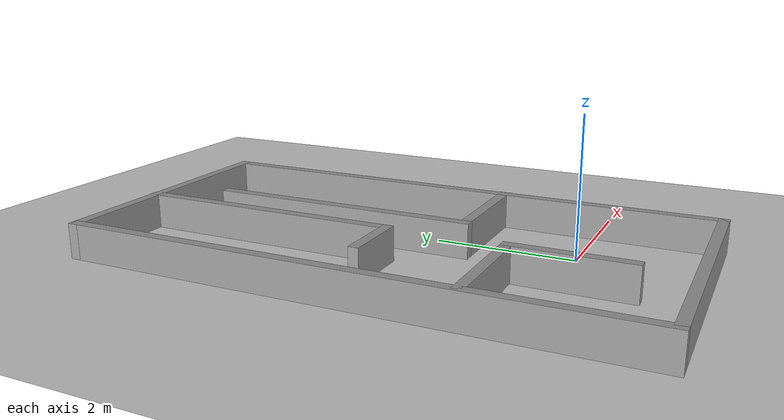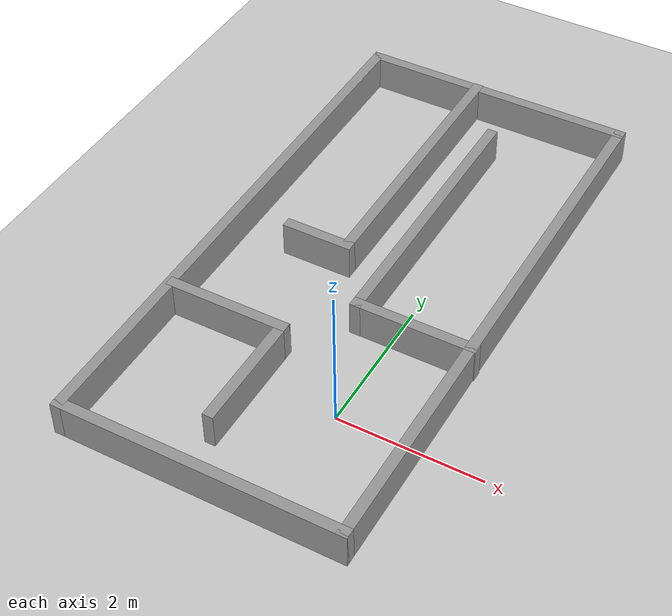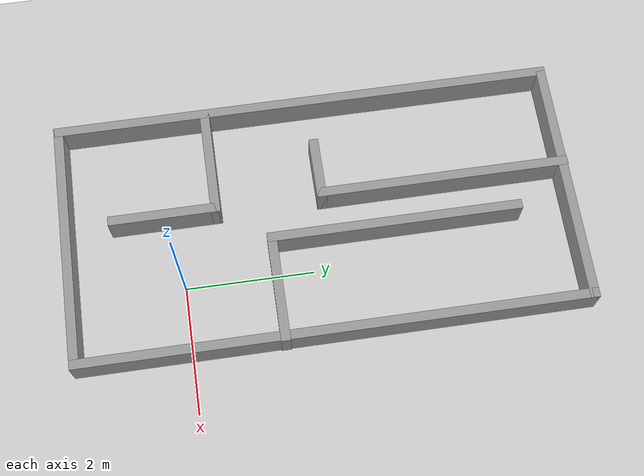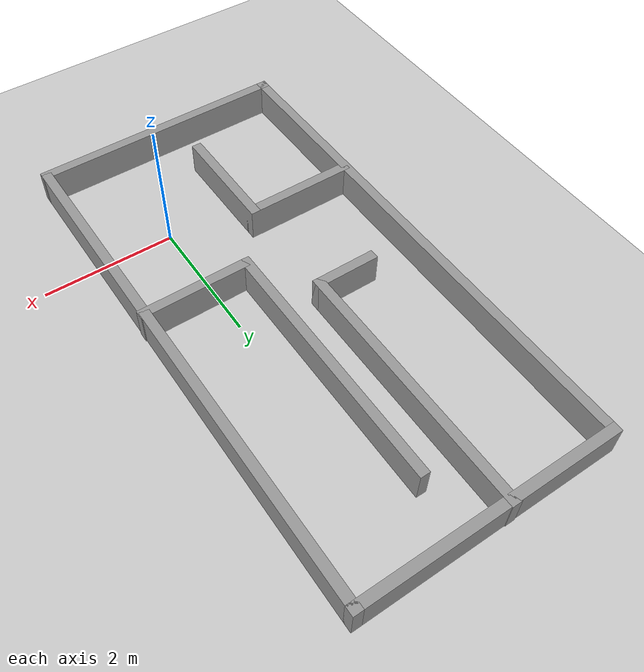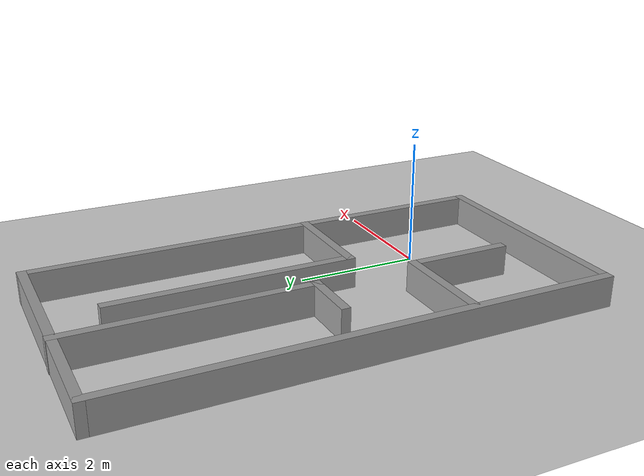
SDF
<sdf version="1.7">
 <world name="default">
  <light name="sun" type="directional">
   <pose>0 0 10 0 -0 0</pose>
   <diffuse>0.8 0.8 0.8 1</diffuse>
   <specular>0.2 0.2 0.2 1</specular>
   <attenuation>
    <range>1000</range>
    <constant>0.9</constant>
    <linear>0.01</linear>
    <quadratic>0.001</quadratic>
   </attenuation>
   <direction>-0.5 0.1 -0.9</direction>
   <spot><inner_angle>0</inner_angle><outer_angle>0</outer_angle><falloff>0</falloff></spot>
  </light>
  <model name="ground_plane">
   <static>1</static>
   <link name="link">
    <collision name="collision">
     <geometry><plane><normal>0 0 1</normal><size>100 100</size></plane></geometry>
     <surface><friction><ode><mu>100</mu><mu2>50</mu2></ode></friction></surface>
    </collision>
    <visual name="visual">
     <cast_shadows>0</cast_shadows>
     <geometry><plane><normal>0 0 1</normal><size>100 100</size></plane></geometry>
     <material>
      <script><uri>file://media/materials/scripts/gazebo.material</uri><name>Gazebo/Grey</name></script>
     </material>
    </visual>
   </link>
  </model>
  <gravity>0 0 -9.8</gravity>
  <magnetic_field>6e-06 2.3e-05 -4.2e-05</magnetic_field>
  <atmosphere type="adiabatic"/>
  <physics type="ode">
   <max_step_size>0.001</max_step_size>
   <real_time_factor>1</real_time_factor>
   <real_time_update_rate>1000</real_time_update_rate>
  </physics>
  <scene><ambient>0.4 0.4 0.4 1</ambient><background>0.7 0.7 0.7 1</background><shadows>1</shadows></scene>
  <audio><device>default</device></audio>
  <spherical_coordinates>
   <surface_model>EARTH_WGS84</surface_model>
   <latitude_deg>0</latitude_deg>
   <longitude_deg>0</longitude_deg>
   <elevation>0</elevation>
   <heading_deg>0</heading_deg>
  </spherical_coordinates>
  <model name="zoom">
   <pose>-0.802964 2.20238 0 0 0 -1.5681</pose>
   <link name="Wall_0">
    <collision name="Wall_0_Collision">
     <geometry><box><size>4 0.15 0.5</size></box></geometry>
     <pose>0 0 0.25 0 -0 0</pose>
    </collision>
    <visual name="Wall_0_Visual">
     <pose>0 0 0.25 0 -0 0</pose>
     <geometry><box><size>4 0.15 0.5</size></box></geometry>
     <material>
      <script><uri>file://media/materials/scripts/gazebo.material</uri><name>Gazebo/Grey</name></script>
      <ambient>1 1 1 1</ambient>
     </material>
     <meta><layer>0</layer></meta>
    </visual>
    <pose>-3.9205 -0.027 0 0 -0 -1.5708</pose>
   </link>
   <link name="Wall_10">
    <collision name="Wall_10_Collision">
     <geometry><box><size>4 0.15 0.5</size></box></geometry>
     <pose>0 0 0.25 0 -0 0</pose>
    </collision>
    <visual name="Wall_10_Visual">
     <pose>0 0 0.25 0 -0 0</pose>
     <geometry><box><size>4 0.15 0.5</size></box></geometry>
     <material>
      <script><uri>file://media/materials/scripts/gazebo.material</uri><name>Gazebo/Grey</name></script>
      <ambient>1 1 1 1</ambient>
     </material>
     <meta><layer>0</layer></meta>
    </visual>
    <pose>-2.0045 -0.326 0 0 -0 0</pose>
   </link>
   <link name="Wall_11">
    <collision name="Wall_11_Collision">
     <geometry><box><size>1 0.15 0.5</size></box></geometry>
     <pose>0 0 0.25 0 -0 0</pose>
    </collision>
    <visual name="Wall_11_Visual">
     <pose>0 0 0.25 0 -0 0</pose>
     <geometry><box><size>1 0.15 0.5</size></box></geometry>
     <material>
      <script><uri>file://media/materials/scripts/gazebo.material</uri><name>Gazebo/Grey</name></script>
      <ambient>1 1 1 1</ambient>
     </material>
     <meta><layer>0</layer></meta>
    </visual>
    <pose>-0.0795 -0.751 0 0 -0 -1.5708</pose>
   </link>
   <link name="Wall_13">
    <collision name="Wall_13_Collision">
     <geometry><box><size>1.75 0.15 0.5</size></box></geometry>
     <pose>0 0 0.25 0 -0 0</pose>
    </collision>
    <visual name="Wall_13_Visual">
     <pose>0 0 0.25 0 -0 0</pose>
     <geometry><box><size>1.75 0.15 0.5</size></box></geometry>
     <material>
      <script><uri>file://media/materials/scripts/gazebo.material</uri><name>Gazebo/Grey</name></script>
      <ambient>1 1 1 1</ambient>
     </material>
     <meta><layer>0</layer></meta>
    </visual>
    <pose>1.5915 -1.107 0 0 -0 1.5708</pose>
   </link>
   <link name="Wall_14">
    <collision name="Wall_14_Collision">
     <geometry><box><size>1.75 0.15 0.5</size></box></geometry>
     <pose>0 0 0.25 0 -0 0</pose>
    </collision>
    <visual name="Wall_14_Visual">
     <pose>0 0 0.25 0 -0 0</pose>
     <geometry><box><size>1.75 0.15 0.5</size></box></geometry>
     <material>
      <script><uri>file://media/materials/scripts/gazebo.material</uri><name>Gazebo/Grey</name></script>
      <ambient>1 1 1 1</ambient>
     </material>
     <meta><layer>0</layer></meta>
    </visual>
    <pose>2.3915 -0.307 0 0 -0 0</pose>
   </link>
   <link name="Wall_2">
    <collision name="Wall_2_Collision">
     <geometry><box><size>8 0.15 0.5</size></box></geometry>
     <pose>0 0 0.25 0 -0 0</pose>
    </collision>
    <visual name="Wall_2_Visual">
     <pose>0 0 0.25 0 -0 0</pose>
     <geometry><box><size>8 0.15 0.5</size></box></geometry>
     <material>
      <script><uri>file://media/materials/scripts/gazebo.material</uri><name>Gazebo/Grey</name></script>
      <ambient>1 1 1 1</ambient>
     </material>
     <meta><layer>0</layer></meta>
    </visual>
    <pose>0.0045 1.898 0 0 -0 0</pose>
   </link>
   <link name="Wall_3">
    <collision name="Wall_3_Collision">
     <geometry><box><size>4 0.15 0.5</size></box></geometry>
     <pose>0 0 0.25 0 -0 0</pose>
    </collision>
    <visual name="Wall_3_Visual">
     <pose>0 0 0.25 0 -0 0</pose>
     <geometry><box><size>4 0.15 0.5</size></box></geometry>
     <material>
      <script><uri>file://media/materials/scripts/gazebo.material</uri><name>Gazebo/Grey</name></script>
      <ambient>1 1 1 1</ambient>
     </material>
     <meta><layer>0</layer></meta>
    </visual>
    <pose>3.9295 -0.027 0 0 -0 -1.5708</pose>
   </link>
   <link name="Wall_4">
    <collision name="Wall_4_Collision">
     <geometry><box><size>8 0.15 0.5</size></box></geometry>
     <pose>0 0 0.25 0 -0 0</pose>
    </collision>
    <visual name="Wall_4_Visual">
     <pose>0 0 0.25 0 -0 0</pose>
     <geometry><box><size>8 0.15 0.5</size></box></geometry>
     <material>
      <script><uri>file://media/materials/scripts/gazebo.material</uri><name>Gazebo/Grey</name></script>
      <ambient>1 1 1 1</ambient>
     </material>
     <meta><layer>0</layer></meta>
    </visual>
    <pose>0.0045 -1.952 0 0 -0 3.14159</pose>
   </link>
   <link name="Wall_6">
    <collision name="Wall_6_Collision">
     <geometry><box><size>1.75 0.15 0.5</size></box></geometry>
     <pose>0 0 0.25 0 -0 0</pose>
    </collision>
    <visual name="Wall_6_Visual">
     <pose>0 0 0.25 0 -0 0</pose>
     <geometry><box><size>1.75 0.15 0.5</size></box></geometry>
     <material>
      <script><uri>file://media/materials/scripts/gazebo.material</uri><name>Gazebo/Grey</name></script>
      <ambient>1 1 1 1</ambient>
     </material>
     <meta><layer>0</layer></meta>
    </visual>
    <pose>0.7855 1.11 0 0 -0 -1.5708</pose>
   </link>
   <link name="Wall_7">
    <collision name="Wall_7_Collision">
     <geometry><box><size>4 0.15 0.5</size></box></geometry>
     <pose>0 0 0.25 0 -0 0</pose>
    </collision>
    <visual name="Wall_7_Visual">
     <pose>0 0 0.25 0 -0 0</pose>
     <geometry><box><size>4 0.15 0.5</size></box></geometry>
     <material>
      <script><uri>file://media/materials/scripts/gazebo.material</uri><name>Gazebo/Grey</name></script>
      <ambient>1 1 1 1</ambient>
     </material>
     <meta><layer>0</layer></meta>
    </visual>
    <pose>-1.1395 0.31 0 0 -0 3.14159</pose>
   </link>
   <static>1</static>
  </model>
 </world>
</sdf>
